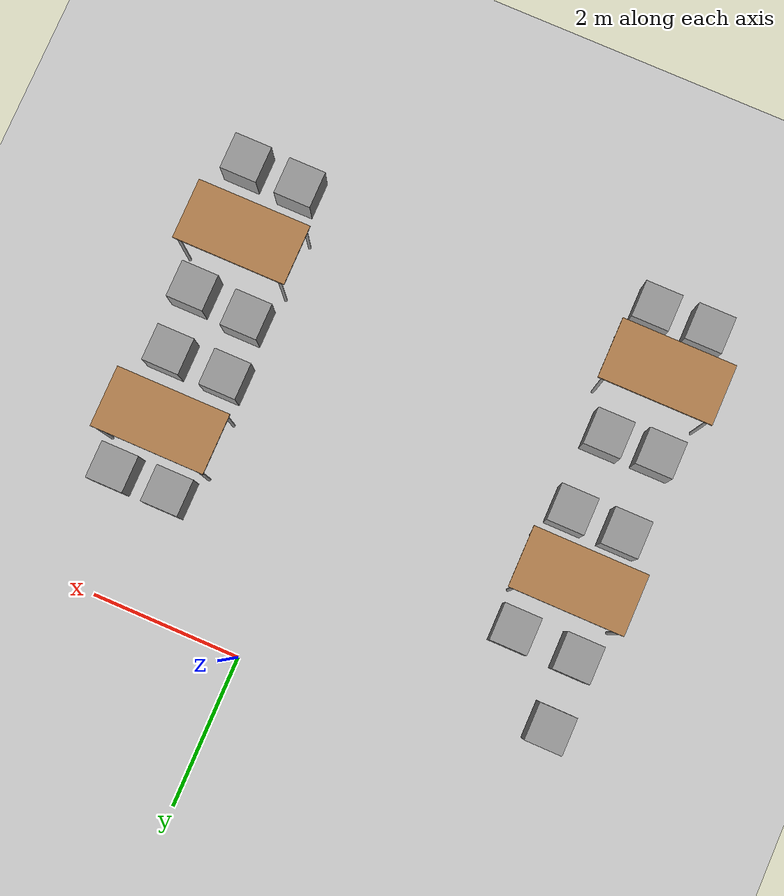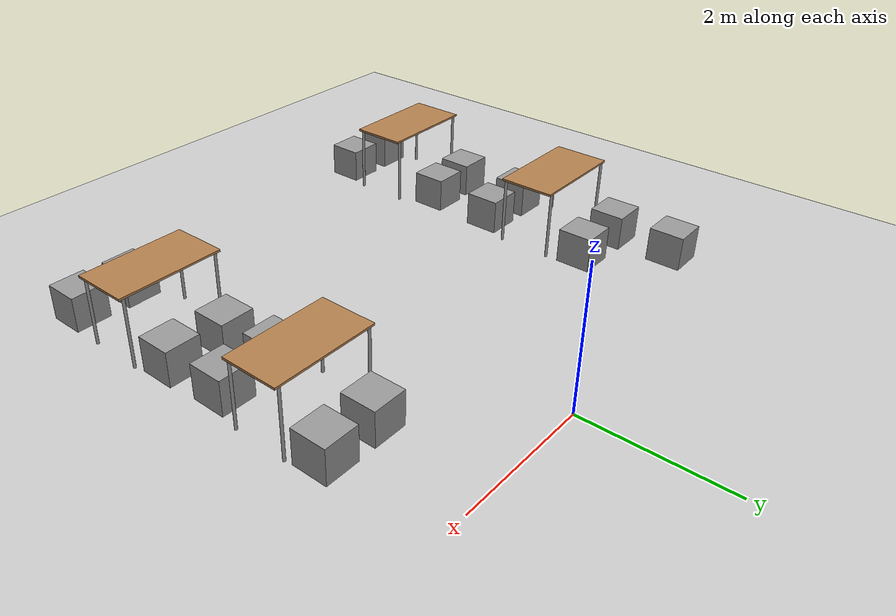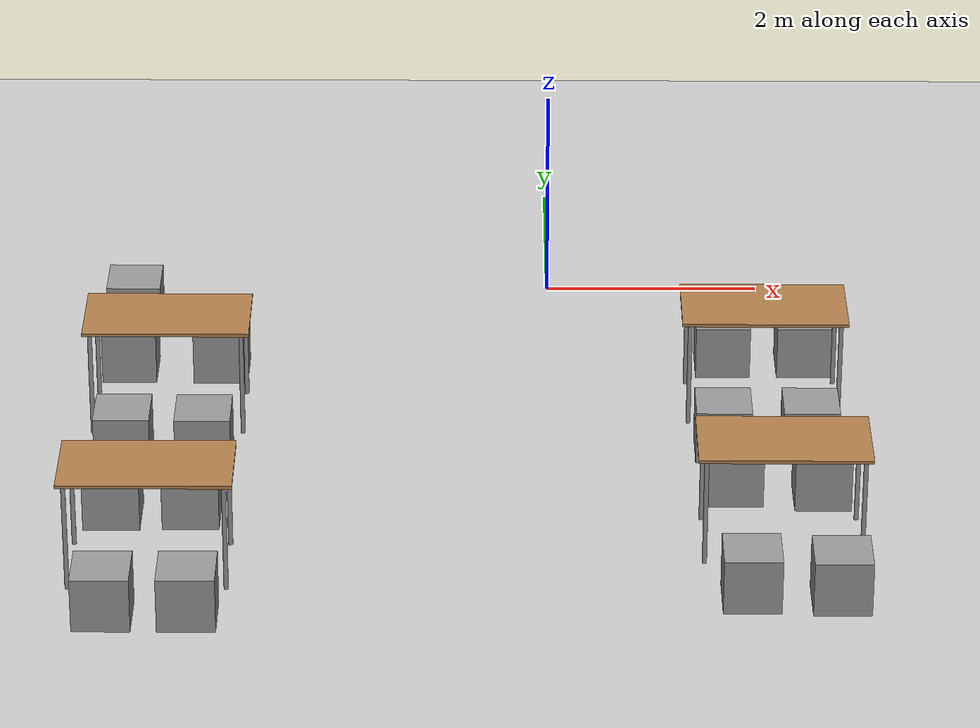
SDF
<sdf version="1.7">
 <world name="default">
  <model name="ground_plane">
   <static>1</static>
   <link name="link">
    <collision name="collision">
     <geometry><plane><normal>0 0 1</normal><size>100 100</size></plane></geometry>
     <surface><friction><ode><mu>100</mu><mu2>50</mu2></ode></friction></surface>
    </collision>
    <visual name="visual">
     <cast_shadows>0</cast_shadows>
     <geometry><plane><normal>0 0 1</normal><size>100 100</size></plane></geometry>
     <material>
      <script><uri>file://media/materials/scripts/gazebo.material</uri><name>Gazebo/Grey</name></script>
     </material>
    </visual>
   </link>
  </model>
  <model name="table_1">
   <static>1</static>
   <link name="link">
    <collision name="surface">
     <pose>0 0 1 0 -0 0</pose>
     <geometry><box><size>1.5 0.8 0.03</size></box></geometry>
     <surface><friction><ode><mu>0.6</mu><mu2>0.6</mu2></ode></friction></surface>
    </collision>
    <visual name="visual1">
     <pose>0 0 1 0 -0 0</pose>
     <geometry><box><size>1.5 0.8 0.03</size></box></geometry>
     <material>
      <script><uri>file://media/materials/scripts/gazebo.material</uri><name>Gazebo/Wood</name></script>
     </material>
    </visual>
    <collision name="front_left_leg">
     <pose>0.68 0.38 0.5 0 -0 0</pose>
     <geometry><cylinder><radius>0.02</radius><length>1</length></cylinder></geometry>
    </collision>
    <visual name="front_left_leg">
     <pose>0.68 0.38 0.5 0 -0 0</pose>
     <geometry><cylinder><radius>0.02</radius><length>1</length></cylinder></geometry>
     <material>
      <script><uri>file://media/materials/scripts/gazebo.material</uri><name>Gazebo/Grey</name></script>
     </material>
    </visual>
    <collision name="front_right_leg">
     <pose>0.68 -0.38 0.5 0 -0 0</pose>
     <geometry><cylinder><radius>0.02</radius><length>1</length></cylinder></geometry>
    </collision>
    <visual name="front_right_leg">
     <pose>0.68 -0.38 0.5 0 -0 0</pose>
     <geometry><cylinder><radius>0.02</radius><length>1</length></cylinder></geometry>
     <material>
      <script><uri>file://media/materials/scripts/gazebo.material</uri><name>Gazebo/Grey</name></script>
     </material>
    </visual>
    <collision name="back_right_leg">
     <pose>-0.68 -0.38 0.5 0 -0 0</pose>
     <geometry><cylinder><radius>0.02</radius><length>1</length></cylinder></geometry>
    </collision>
    <visual name="back_right_leg">
     <pose>-0.68 -0.38 0.5 0 -0 0</pose>
     <geometry><cylinder><radius>0.02</radius><length>1</length></cylinder></geometry>
     <material>
      <script><uri>file://media/materials/scripts/gazebo.material</uri><name>Gazebo/Grey</name></script>
     </material>
    </visual>
    <collision name="back_left_leg">
     <pose>-0.68 0.38 0.5 0 -0 0</pose>
     <geometry><cylinder><radius>0.02</radius><length>1</length></cylinder></geometry>
    </collision>
    <visual name="back_left_leg">
     <pose>-0.68 0.38 0.5 0 -0 0</pose>
     <geometry><cylinder><radius>0.02</radius><length>1</length></cylinder></geometry>
     <material>
      <script><uri>file://media/materials/scripts/gazebo.material</uri><name>Gazebo/Grey</name></script>
     </material>
    </visual>
   </link>
   <pose>-3.46014 -2.51399 0 0 -0 0</pose>
  </model>
  <model name="table_2">
   <static>1</static>
   <link name="link">
    <collision name="surface">
     <pose>0 0 1 0 -0 0</pose>
     <geometry><box><size>1.5 0.8 0.03</size></box></geometry>
     <surface><friction><ode><mu>0.6</mu><mu2>0.6</mu2></ode></friction></surface>
    </collision>
    <visual name="visual1">
     <pose>0 0 1 0 -0 0</pose>
     <geometry><box><size>1.5 0.8 0.03</size></box></geometry>
     <material>
      <script><uri>file://media/materials/scripts/gazebo.material</uri><name>Gazebo/Wood</name></script>
     </material>
    </visual>
    <collision name="front_left_leg">
     <pose>0.68 0.38 0.5 0 -0 0</pose>
     <geometry><cylinder><radius>0.02</radius><length>1</length></cylinder></geometry>
    </collision>
    <visual name="front_left_leg">
     <pose>0.68 0.38 0.5 0 -0 0</pose>
     <geometry><cylinder><radius>0.02</radius><length>1</length></cylinder></geometry>
     <material>
      <script><uri>file://media/materials/scripts/gazebo.material</uri><name>Gazebo/Grey</name></script>
     </material>
    </visual>
    <collision name="front_right_leg">
     <pose>0.68 -0.38 0.5 0 -0 0</pose>
     <geometry><cylinder><radius>0.02</radius><length>1</length></cylinder></geometry>
    </collision>
    <visual name="front_right_leg">
     <pose>0.68 -0.38 0.5 0 -0 0</pose>
     <geometry><cylinder><radius>0.02</radius><length>1</length></cylinder></geometry>
     <material>
      <script><uri>file://media/materials/scripts/gazebo.material</uri><name>Gazebo/Grey</name></script>
     </material>
    </visual>
    <collision name="back_right_leg">
     <pose>-0.68 -0.38 0.5 0 -0 0</pose>
     <geometry><cylinder><radius>0.02</radius><length>1</length></cylinder></geometry>
    </collision>
    <visual name="back_right_leg">
     <pose>-0.68 -0.38 0.5 0 -0 0</pose>
     <geometry><cylinder><radius>0.02</radius><length>1</length></cylinder></geometry>
     <material>
      <script><uri>file://media/materials/scripts/gazebo.material</uri><name>Gazebo/Grey</name></script>
     </material>
    </visual>
    <collision name="back_left_leg">
     <pose>-0.68 0.38 0.5 0 -0 0</pose>
     <geometry><cylinder><radius>0.02</radius><length>1</length></cylinder></geometry>
    </collision>
    <visual name="back_left_leg">
     <pose>-0.68 0.38 0.5 0 -0 0</pose>
     <geometry><cylinder><radius>0.02</radius><length>1</length></cylinder></geometry>
     <material>
      <script><uri>file://media/materials/scripts/gazebo.material</uri><name>Gazebo/Grey</name></script>
     </material>
    </visual>
   </link>
   <pose>-3.46984 -5.28766 0 0 -0 0</pose>
  </model>
  <model name="table_5">
   <static>1</static>
   <link name="link">
    <collision name="surface">
     <pose>0 0 1 0 -0 0</pose>
     <geometry><box><size>1.5 0.8 0.03</size></box></geometry>
     <surface><friction><ode><mu>0.6</mu><mu2>0.6</mu2></ode></friction></surface>
    </collision>
    <visual name="visual1">
     <pose>0 0 1 0 -0 0</pose>
     <geometry><box><size>1.5 0.8 0.03</size></box></geometry>
     <material>
      <script><uri>file://media/materials/scripts/gazebo.material</uri><name>Gazebo/Wood</name></script>
     </material>
    </visual>
    <collision name="front_left_leg">
     <pose>0.68 0.38 0.5 0 -0 0</pose>
     <geometry><cylinder><radius>0.02</radius><length>1</length></cylinder></geometry>
    </collision>
    <visual name="front_left_leg">
     <pose>0.68 0.38 0.5 0 -0 0</pose>
     <geometry><cylinder><radius>0.02</radius><length>1</length></cylinder></geometry>
     <material>
      <script><uri>file://media/materials/scripts/gazebo.material</uri><name>Gazebo/Grey</name></script>
     </material>
    </visual>
    <collision name="front_right_leg">
     <pose>0.68 -0.38 0.5 0 -0 0</pose>
     <geometry><cylinder><radius>0.02</radius><length>1</length></cylinder></geometry>
    </collision>
    <visual name="front_right_leg">
     <pose>0.68 -0.38 0.5 0 -0 0</pose>
     <geometry><cylinder><radius>0.02</radius><length>1</length></cylinder></geometry>
     <material>
      <script><uri>file://media/materials/scripts/gazebo.material</uri><name>Gazebo/Grey</name></script>
     </material>
    </visual>
    <collision name="back_right_leg">
     <pose>-0.68 -0.38 0.5 0 -0 0</pose>
     <geometry><cylinder><radius>0.02</radius><length>1</length></cylinder></geometry>
    </collision>
    <visual name="back_right_leg">
     <pose>-0.68 -0.38 0.5 0 -0 0</pose>
     <geometry><cylinder><radius>0.02</radius><length>1</length></cylinder></geometry>
     <material>
      <script><uri>file://media/materials/scripts/gazebo.material</uri><name>Gazebo/Grey</name></script>
     </material>
    </visual>
    <collision name="back_left_leg">
     <pose>-0.68 0.38 0.5 0 -0 0</pose>
     <geometry><cylinder><radius>0.02</radius><length>1</length></cylinder></geometry>
    </collision>
    <visual name="back_left_leg">
     <pose>-0.68 0.38 0.5 0 -0 0</pose>
     <geometry><cylinder><radius>0.02</radius><length>1</length></cylinder></geometry>
     <material>
      <script><uri>file://media/materials/scripts/gazebo.material</uri><name>Gazebo/Grey</name></script>
     </material>
    </visual>
   </link>
   <pose>1.94221 -2.29258 0 0 -0 0</pose>
  </model>
  <model name="table_6">
   <static>1</static>
   <link name="link">
    <collision name="surface">
     <pose>0 0 1 0 -0 0</pose>
     <geometry><box><size>1.5 0.8 0.03</size></box></geometry>
     <surface><friction><ode><mu>0.6</mu><mu2>0.6</mu2></ode></friction></surface>
    </collision>
    <visual name="visual1">
     <pose>0 0 1 0 -0 0</pose>
     <geometry><box><size>1.5 0.8 0.03</size></box></geometry>
     <material>
      <script><uri>file://media/materials/scripts/gazebo.material</uri><name>Gazebo/Wood</name></script>
     </material>
    </visual>
    <collision name="front_left_leg">
     <pose>0.68 0.38 0.5 0 -0 0</pose>
     <geometry><cylinder><radius>0.02</radius><length>1</length></cylinder></geometry>
    </collision>
    <visual name="front_left_leg">
     <pose>0.68 0.38 0.5 0 -0 0</pose>
     <geometry><cylinder><radius>0.02</radius><length>1</length></cylinder></geometry>
     <material>
      <script><uri>file://media/materials/scripts/gazebo.material</uri><name>Gazebo/Grey</name></script>
     </material>
    </visual>
    <collision name="front_right_leg">
     <pose>0.68 -0.38 0.5 0 -0 0</pose>
     <geometry><cylinder><radius>0.02</radius><length>1</length></cylinder></geometry>
    </collision>
    <visual name="front_right_leg">
     <pose>0.68 -0.38 0.5 0 -0 0</pose>
     <geometry><cylinder><radius>0.02</radius><length>1</length></cylinder></geometry>
     <material>
      <script><uri>file://media/materials/scripts/gazebo.material</uri><name>Gazebo/Grey</name></script>
     </material>
    </visual>
    <collision name="back_right_leg">
     <pose>-0.68 -0.38 0.5 0 -0 0</pose>
     <geometry><cylinder><radius>0.02</radius><length>1</length></cylinder></geometry>
    </collision>
    <visual name="back_right_leg">
     <pose>-0.68 -0.38 0.5 0 -0 0</pose>
     <geometry><cylinder><radius>0.02</radius><length>1</length></cylinder></geometry>
     <material>
      <script><uri>file://media/materials/scripts/gazebo.material</uri><name>Gazebo/Grey</name></script>
     </material>
    </visual>
    <collision name="back_left_leg">
     <pose>-0.68 0.38 0.5 0 -0 0</pose>
     <geometry><cylinder><radius>0.02</radius><length>1</length></cylinder></geometry>
    </collision>
    <visual name="back_left_leg">
     <pose>-0.68 0.38 0.5 0 -0 0</pose>
     <geometry><cylinder><radius>0.02</radius><length>1</length></cylinder></geometry>
     <material>
      <script><uri>file://media/materials/scripts/gazebo.material</uri><name>Gazebo/Grey</name></script>
     </material>
    </visual>
   </link>
   <pose>1.99333 -4.81792 0 0 -0 0</pose>
  </model>
  <model name="chair_3">
   <link name="link">
    <inertial>
     <mass>1</mass>
     <inertia>
      <ixx>0.166667</ixx>
      <ixy>0</ixy>
      <ixz>0</ixz>
      <iyy>0.166667</iyy>
      <iyz>0</iyz>
      <izz>0.166667</izz>
     </inertia>
    </inertial>
    <visual name="visual">
     <geometry><box><size>0.5 0.5 0.5</size></box></geometry>
     <material>
      <script><name>Gazebo/Grey</name><uri>file://media/materials/scripts/gazebo.material</uri></script>
      <shader type="pixel"><normal_map>__default__</normal_map></shader>
      <ambient>0.3 0.3 0.3 1</ambient>
      <diffuse>0.7 0.7 0.7 1</diffuse>
      <specular>0.01 0.01 0.01 1</specular>
      <emissive>0 0 0 1</emissive>
     </material>
    </visual>
    <collision name="collision">
     <geometry><box><size>0.5 0.5 0.5</size></box></geometry>
     <surface>
      <friction>
       <ode><mu>1</mu><mu2>1</mu2><fdir1>0 0 0</fdir1><slip1>0</slip1><slip2>0</slip2></ode>
       <torsional>
        <coefficient>1</coefficient>
        <patch_radius>0</patch_radius>
        <surface_radius>0</surface_radius>
        <use_patch_radius>1</use_patch_radius>
        <ode><slip>0</slip></ode>
       </torsional>
      </friction>
      <bounce><restitution_coefficient>0</restitution_coefficient><threshold>1e+06</threshold></bounce>
      <contact>
       <collide_without_contact>0</collide_without_contact>
       <collide_without_contact_bitmask>1</collide_without_contact_bitmask>
       <collide_bitmask>1</collide_bitmask>
       <ode>
        <soft_cfm>0</soft_cfm>
        <soft_erp>0.2</soft_erp>
        <kp>1e+13</kp>
        <kd>1</kd>
        <max_vel>0.01</max_vel>
        <min_depth>0</min_depth>
       </ode>
       <bullet>
        <split_impulse>1</split_impulse>
        <split_impulse_penetration_threshold>-0.01</split_impulse_penetration_threshold>
        <soft_cfm>0</soft_cfm>
        <soft_erp>0.2</soft_erp>
        <kp>1e+13</kp>
        <kd>1</kd>
       </bullet>
      </contact>
     </surface>
    </collision>
   </link>
   <static>0</static>
   <pose>-3.89509 -0.756773 0.25 0 -0 0</pose>
  </model>
  <model name="chair_7">
   <link name="link">
    <inertial>
     <mass>1</mass>
     <inertia>
      <ixx>0.166667</ixx>
      <ixy>0</ixy>
      <ixz>0</ixz>
      <iyy>0.166667</iyy>
      <iyz>0</iyz>
      <izz>0.166667</izz>
     </inertia>
    </inertial>
    <visual name="visual">
     <geometry><box><size>0.5 0.5 0.5</size></box></geometry>
     <material>
      <script><name>Gazebo/Grey</name><uri>file://media/materials/scripts/gazebo.material</uri></script>
      <shader type="pixel"><normal_map>__default__</normal_map></shader>
      <ambient>0.3 0.3 0.3 1</ambient>
      <diffuse>0.7 0.7 0.7 1</diffuse>
      <specular>0.01 0.01 0.01 1</specular>
      <emissive>0 0 0 1</emissive>
     </material>
    </visual>
    <collision name="collision">
     <geometry><box><size>0.5 0.5 0.5</size></box></geometry>
     <surface>
      <friction>
       <ode><mu>1</mu><mu2>1</mu2><fdir1>0 0 0</fdir1><slip1>0</slip1><slip2>0</slip2></ode>
       <torsional>
        <coefficient>1</coefficient>
        <patch_radius>0</patch_radius>
        <surface_radius>0</surface_radius>
        <use_patch_radius>1</use_patch_radius>
        <ode><slip>0</slip></ode>
       </torsional>
      </friction>
      <bounce><restitution_coefficient>0</restitution_coefficient><threshold>1e+06</threshold></bounce>
      <contact>
       <collide_without_contact>0</collide_without_contact>
       <collide_without_contact_bitmask>1</collide_without_contact_bitmask>
       <collide_bitmask>1</collide_bitmask>
       <ode>
        <soft_cfm>0</soft_cfm>
        <soft_erp>0.2</soft_erp>
        <kp>1e+13</kp>
        <kd>1</kd>
        <max_vel>0.01</max_vel>
        <min_depth>0</min_depth>
       </ode>
       <bullet>
        <split_impulse>1</split_impulse>
        <split_impulse_penetration_threshold>-0.01</split_impulse_penetration_threshold>
        <soft_cfm>0</soft_cfm>
        <soft_erp>0.2</soft_erp>
        <kp>1e+13</kp>
        <kd>1</kd>
       </bullet>
      </contact>
     </surface>
    </collision>
   </link>
   <static>0</static>
   <pose>-3.87613 -1.6864 0.25 0 -0 0</pose>
  </model>
  <model name="chair_8">
   <link name="link">
    <inertial>
     <mass>1</mass>
     <inertia>
      <ixx>0.166667</ixx>
      <ixy>0</ixy>
      <ixz>0</ixz>
      <iyy>0.166667</iyy>
      <iyz>0</iyz>
      <izz>0.166667</izz>
     </inertia>
    </inertial>
    <visual name="visual">
     <geometry><box><size>0.5 0.5 0.5</size></box></geometry>
     <material>
      <script><name>Gazebo/Grey</name><uri>file://media/materials/scripts/gazebo.material</uri></script>
      <shader type="pixel"><normal_map>__default__</normal_map></shader>
      <ambient>0.3 0.3 0.3 1</ambient>
      <diffuse>0.7 0.7 0.7 1</diffuse>
      <specular>0.01 0.01 0.01 1</specular>
      <emissive>0 0 0 1</emissive>
     </material>
    </visual>
    <collision name="collision">
     <geometry><box><size>0.5 0.5 0.5</size></box></geometry>
     <surface>
      <friction>
       <ode><mu>1</mu><mu2>1</mu2><fdir1>0 0 0</fdir1><slip1>0</slip1><slip2>0</slip2></ode>
       <torsional>
        <coefficient>1</coefficient>
        <patch_radius>0</patch_radius>
        <surface_radius>0</surface_radius>
        <use_patch_radius>1</use_patch_radius>
        <ode><slip>0</slip></ode>
       </torsional>
      </friction>
      <bounce><restitution_coefficient>0</restitution_coefficient><threshold>1e+06</threshold></bounce>
      <contact>
       <collide_without_contact>0</collide_without_contact>
       <collide_without_contact_bitmask>1</collide_without_contact_bitmask>
       <collide_bitmask>1</collide_bitmask>
       <ode>
        <soft_cfm>0</soft_cfm>
        <soft_erp>0.2</soft_erp>
        <kp>1e+13</kp>
        <kd>1</kd>
        <max_vel>0.01</max_vel>
        <min_depth>0</min_depth>
       </ode>
       <bullet>
        <split_impulse>1</split_impulse>
        <split_impulse_penetration_threshold>-0.01</split_impulse_penetration_threshold>
        <soft_cfm>0</soft_cfm>
        <soft_erp>0.2</soft_erp>
        <kp>1e+13</kp>
        <kd>1</kd>
       </bullet>
      </contact>
     </surface>
    </collision>
   </link>
   <static>0</static>
   <pose>-3.03127 -1.70473 0.25 0 -0 0</pose>
  </model>
  <model name="chair_9">
   <link name="link">
    <inertial>
     <mass>1</mass>
     <inertia>
      <ixx>0.166667</ixx>
      <ixy>0</ixy>
      <ixz>0</ixz>
      <iyy>0.166667</iyy>
      <iyz>0</iyz>
      <izz>0.166667</izz>
     </inertia>
    </inertial>
    <visual name="visual">
     <geometry><box><size>0.5 0.5 0.5</size></box></geometry>
     <material>
      <script><name>Gazebo/Grey</name><uri>file://media/materials/scripts/gazebo.material</uri></script>
      <shader type="pixel"><normal_map>__default__</normal_map></shader>
      <ambient>0.3 0.3 0.3 1</ambient>
      <diffuse>0.7 0.7 0.7 1</diffuse>
      <specular>0.01 0.01 0.01 1</specular>
      <emissive>0 0 0 1</emissive>
     </material>
    </visual>
    <collision name="collision">
     <geometry><box><size>0.5 0.5 0.5</size></box></geometry>
     <surface>
      <friction>
       <ode><mu>1</mu><mu2>1</mu2><fdir1>0 0 0</fdir1><slip1>0</slip1><slip2>0</slip2></ode>
       <torsional>
        <coefficient>1</coefficient>
        <patch_radius>0</patch_radius>
        <surface_radius>0</surface_radius>
        <use_patch_radius>1</use_patch_radius>
        <ode><slip>0</slip></ode>
       </torsional>
      </friction>
      <bounce><restitution_coefficient>0</restitution_coefficient><threshold>1e+06</threshold></bounce>
      <contact>
       <collide_without_contact>0</collide_without_contact>
       <collide_without_contact_bitmask>1</collide_without_contact_bitmask>
       <collide_bitmask>1</collide_bitmask>
       <ode>
        <soft_cfm>0</soft_cfm>
        <soft_erp>0.2</soft_erp>
        <kp>1e+13</kp>
        <kd>1</kd>
        <max_vel>0.01</max_vel>
        <min_depth>0</min_depth>
       </ode>
       <bullet>
        <split_impulse>1</split_impulse>
        <split_impulse_penetration_threshold>-0.01</split_impulse_penetration_threshold>
        <soft_cfm>0</soft_cfm>
        <soft_erp>0.2</soft_erp>
        <kp>1e+13</kp>
        <kd>1</kd>
       </bullet>
      </contact>
     </surface>
    </collision>
   </link>
   <static>0</static>
   <pose>-3.82863 -3.34222 0.25 0 -0 0</pose>
  </model>
  <model name="chair_10">
   <link name="link">
    <inertial>
     <mass>1</mass>
     <inertia>
      <ixx>0.166667</ixx>
      <ixy>0</ixy>
      <ixz>0</ixz>
      <iyy>0.166667</iyy>
      <iyz>0</iyz>
      <izz>0.166667</izz>
     </inertia>
    </inertial>
    <visual name="visual">
     <geometry><box><size>0.5 0.5 0.5</size></box></geometry>
     <material>
      <script><name>Gazebo/Grey</name><uri>file://media/materials/scripts/gazebo.material</uri></script>
      <shader type="pixel"><normal_map>__default__</normal_map></shader>
      <ambient>0.3 0.3 0.3 1</ambient>
      <diffuse>0.7 0.7 0.7 1</diffuse>
      <specular>0.01 0.01 0.01 1</specular>
      <emissive>0 0 0 1</emissive>
     </material>
    </visual>
    <collision name="collision">
     <geometry><box><size>0.5 0.5 0.5</size></box></geometry>
     <surface>
      <friction>
       <ode><mu>1</mu><mu2>1</mu2><fdir1>0 0 0</fdir1><slip1>0</slip1><slip2>0</slip2></ode>
       <torsional>
        <coefficient>1</coefficient>
        <patch_radius>0</patch_radius>
        <surface_radius>0</surface_radius>
        <use_patch_radius>1</use_patch_radius>
        <ode><slip>0</slip></ode>
       </torsional>
      </friction>
      <bounce><restitution_coefficient>0</restitution_coefficient><threshold>1e+06</threshold></bounce>
      <contact>
       <collide_without_contact>0</collide_without_contact>
       <collide_without_contact_bitmask>1</collide_without_contact_bitmask>
       <collide_bitmask>1</collide_bitmask>
       <ode>
        <soft_cfm>0</soft_cfm>
        <soft_erp>0.2</soft_erp>
        <kp>1e+13</kp>
        <kd>1</kd>
        <max_vel>0.01</max_vel>
        <min_depth>0</min_depth>
       </ode>
       <bullet>
        <split_impulse>1</split_impulse>
        <split_impulse_penetration_threshold>-0.01</split_impulse_penetration_threshold>
        <soft_cfm>0</soft_cfm>
        <soft_erp>0.2</soft_erp>
        <kp>1e+13</kp>
        <kd>1</kd>
       </bullet>
      </contact>
     </surface>
    </collision>
   </link>
   <static>0</static>
   <pose>-3.1053 -3.34888 0.25 0 -0 0</pose>
  </model>
  <model name="chair_11">
   <link name="link">
    <inertial>
     <mass>1</mass>
     <inertia>
      <ixx>0.166667</ixx>
      <ixy>0</ixy>
      <ixz>0</ixz>
      <iyy>0.166667</iyy>
      <iyz>0</iyz>
      <izz>0.166667</izz>
     </inertia>
    </inertial>
    <visual name="visual">
     <geometry><box><size>0.5 0.5 0.5</size></box></geometry>
     <material>
      <script><name>Gazebo/Grey</name><uri>file://media/materials/scripts/gazebo.material</uri></script>
      <shader type="pixel"><normal_map>__default__</normal_map></shader>
      <ambient>0.3 0.3 0.3 1</ambient>
      <diffuse>0.7 0.7 0.7 1</diffuse>
      <specular>0.01 0.01 0.01 1</specular>
      <emissive>0 0 0 1</emissive>
     </material>
    </visual>
    <collision name="collision">
     <geometry><box><size>0.5 0.5 0.5</size></box></geometry>
     <surface>
      <friction>
       <ode><mu>1</mu><mu2>1</mu2><fdir1>0 0 0</fdir1><slip1>0</slip1><slip2>0</slip2></ode>
       <torsional>
        <coefficient>1</coefficient>
        <patch_radius>0</patch_radius>
        <surface_radius>0</surface_radius>
        <use_patch_radius>1</use_patch_radius>
        <ode><slip>0</slip></ode>
       </torsional>
      </friction>
      <bounce><restitution_coefficient>0</restitution_coefficient><threshold>1e+06</threshold></bounce>
      <contact>
       <collide_without_contact>0</collide_without_contact>
       <collide_without_contact_bitmask>1</collide_without_contact_bitmask>
       <collide_bitmask>1</collide_bitmask>
       <ode>
        <soft_cfm>0</soft_cfm>
        <soft_erp>0.2</soft_erp>
        <kp>1e+13</kp>
        <kd>1</kd>
        <max_vel>0.01</max_vel>
        <min_depth>0</min_depth>
       </ode>
       <bullet>
        <split_impulse>1</split_impulse>
        <split_impulse_penetration_threshold>-0.01</split_impulse_penetration_threshold>
        <soft_cfm>0</soft_cfm>
        <soft_erp>0.2</soft_erp>
        <kp>1e+13</kp>
        <kd>1</kd>
       </bullet>
      </contact>
     </surface>
    </collision>
   </link>
   <static>0</static>
   <pose>-3.84529 -4.43114 0.25 0 -0 0</pose>
  </model>
  <model name="chair_12">
   <link name="link">
    <inertial>
     <mass>1</mass>
     <inertia>
      <ixx>0.166667</ixx>
      <ixy>0</ixy>
      <ixz>0</ixz>
      <iyy>0.166667</iyy>
      <iyz>0</iyz>
      <izz>0.166667</izz>
     </inertia>
    </inertial>
    <visual name="visual">
     <geometry><box><size>0.5 0.5 0.5</size></box></geometry>
     <material>
      <script><name>Gazebo/Grey</name><uri>file://media/materials/scripts/gazebo.material</uri></script>
      <shader type="pixel"><normal_map>__default__</normal_map></shader>
      <ambient>0.3 0.3 0.3 1</ambient>
      <diffuse>0.7 0.7 0.7 1</diffuse>
      <specular>0.01 0.01 0.01 1</specular>
      <emissive>0 0 0 1</emissive>
     </material>
    </visual>
    <collision name="collision">
     <geometry><box><size>0.5 0.5 0.5</size></box></geometry>
     <surface>
      <friction>
       <ode><mu>1</mu><mu2>1</mu2><fdir1>0 0 0</fdir1><slip1>0</slip1><slip2>0</slip2></ode>
       <torsional>
        <coefficient>1</coefficient>
        <patch_radius>0</patch_radius>
        <surface_radius>0</surface_radius>
        <use_patch_radius>1</use_patch_radius>
        <ode><slip>0</slip></ode>
       </torsional>
      </friction>
      <bounce><restitution_coefficient>0</restitution_coefficient><threshold>1e+06</threshold></bounce>
      <contact>
       <collide_without_contact>0</collide_without_contact>
       <collide_without_contact_bitmask>1</collide_without_contact_bitmask>
       <collide_bitmask>1</collide_bitmask>
       <ode>
        <soft_cfm>0</soft_cfm>
        <soft_erp>0.2</soft_erp>
        <kp>1e+13</kp>
        <kd>1</kd>
        <max_vel>0.01</max_vel>
        <min_depth>0</min_depth>
       </ode>
       <bullet>
        <split_impulse>1</split_impulse>
        <split_impulse_penetration_threshold>-0.01</split_impulse_penetration_threshold>
        <soft_cfm>0</soft_cfm>
        <soft_erp>0.2</soft_erp>
        <kp>1e+13</kp>
        <kd>1</kd>
       </bullet>
      </contact>
     </surface>
    </collision>
   </link>
   <static>0</static>
   <pose>-3.15322 -4.40825 0.25 0 -0 0</pose>
  </model>
  <model name="chair_13">
   <link name="link">
    <inertial>
     <mass>1</mass>
     <inertia>
      <ixx>0.166667</ixx>
      <ixy>0</ixy>
      <ixz>0</ixz>
      <iyy>0.166667</iyy>
      <iyz>0</iyz>
      <izz>0.166667</izz>
     </inertia>
    </inertial>
    <visual name="visual">
     <geometry><box><size>0.5 0.5 0.5</size></box></geometry>
     <material>
      <script><name>Gazebo/Grey</name><uri>file://media/materials/scripts/gazebo.material</uri></script>
      <shader type="pixel"><normal_map>__default__</normal_map></shader>
      <ambient>0.3 0.3 0.3 1</ambient>
      <diffuse>0.7 0.7 0.7 1</diffuse>
      <specular>0.01 0.01 0.01 1</specular>
      <emissive>0 0 0 1</emissive>
     </material>
    </visual>
    <collision name="collision">
     <geometry><box><size>0.5 0.5 0.5</size></box></geometry>
     <surface>
      <friction>
       <ode><mu>1</mu><mu2>1</mu2><fdir1>0 0 0</fdir1><slip1>0</slip1><slip2>0</slip2></ode>
       <torsional>
        <coefficient>1</coefficient>
        <patch_radius>0</patch_radius>
        <surface_radius>0</surface_radius>
        <use_patch_radius>1</use_patch_radius>
        <ode><slip>0</slip></ode>
       </torsional>
      </friction>
      <bounce><restitution_coefficient>0</restitution_coefficient><threshold>1e+06</threshold></bounce>
      <contact>
       <collide_without_contact>0</collide_without_contact>
       <collide_without_contact_bitmask>1</collide_without_contact_bitmask>
       <collide_bitmask>1</collide_bitmask>
       <ode>
        <soft_cfm>0</soft_cfm>
        <soft_erp>0.2</soft_erp>
        <kp>1e+13</kp>
        <kd>1</kd>
        <max_vel>0.01</max_vel>
        <min_depth>0</min_depth>
       </ode>
       <bullet>
        <split_impulse>1</split_impulse>
        <split_impulse_penetration_threshold>-0.01</split_impulse_penetration_threshold>
        <soft_cfm>0</soft_cfm>
        <soft_erp>0.2</soft_erp>
        <kp>1e+13</kp>
        <kd>1</kd>
       </bullet>
      </contact>
     </surface>
    </collision>
   </link>
   <static>0</static>
   <pose>-3.81092 -6.14092 0.25 0 -0 0</pose>
  </model>
  <model name="chair_14">
   <link name="link">
    <inertial>
     <mass>1</mass>
     <inertia>
      <ixx>0.166667</ixx>
      <ixy>0</ixy>
      <ixz>0</ixz>
      <iyy>0.166667</iyy>
      <iyz>0</iyz>
      <izz>0.166667</izz>
     </inertia>
    </inertial>
    <visual name="visual">
     <geometry><box><size>0.5 0.5 0.5</size></box></geometry>
     <material>
      <script><name>Gazebo/Grey</name><uri>file://media/materials/scripts/gazebo.material</uri></script>
      <shader type="pixel"><normal_map>__default__</normal_map></shader>
      <ambient>0.3 0.3 0.3 1</ambient>
      <diffuse>0.7 0.7 0.7 1</diffuse>
      <specular>0.01 0.01 0.01 1</specular>
      <emissive>0 0 0 1</emissive>
     </material>
    </visual>
    <collision name="collision">
     <geometry><box><size>0.5 0.5 0.5</size></box></geometry>
     <surface>
      <friction>
       <ode><mu>1</mu><mu2>1</mu2><fdir1>0 0 0</fdir1><slip1>0</slip1><slip2>0</slip2></ode>
       <torsional>
        <coefficient>1</coefficient>
        <patch_radius>0</patch_radius>
        <surface_radius>0</surface_radius>
        <use_patch_radius>1</use_patch_radius>
        <ode><slip>0</slip></ode>
       </torsional>
      </friction>
      <bounce><restitution_coefficient>0</restitution_coefficient><threshold>1e+06</threshold></bounce>
      <contact>
       <collide_without_contact>0</collide_without_contact>
       <collide_without_contact_bitmask>1</collide_without_contact_bitmask>
       <collide_bitmask>1</collide_bitmask>
       <ode>
        <soft_cfm>0</soft_cfm>
        <soft_erp>0.2</soft_erp>
        <kp>1e+13</kp>
        <kd>1</kd>
        <max_vel>0.01</max_vel>
        <min_depth>0</min_depth>
       </ode>
       <bullet>
        <split_impulse>1</split_impulse>
        <split_impulse_penetration_threshold>-0.01</split_impulse_penetration_threshold>
        <soft_cfm>0</soft_cfm>
        <soft_erp>0.2</soft_erp>
        <kp>1e+13</kp>
        <kd>1</kd>
       </bullet>
      </contact>
     </surface>
    </collision>
   </link>
   <static>0</static>
   <pose>-3.09051 -6.14071 0.25 0 -0 0</pose>
  </model>
  <model name="chair_15">
   <link name="link">
    <inertial>
     <mass>1</mass>
     <inertia>
      <ixx>0.166667</ixx>
      <ixy>0</ixy>
      <ixz>0</ixz>
      <iyy>0.166667</iyy>
      <iyz>0</iyz>
      <izz>0.166667</izz>
     </inertia>
    </inertial>
    <visual name="visual">
     <geometry><box><size>0.5 0.5 0.5</size></box></geometry>
     <material>
      <script><name>Gazebo/Grey</name><uri>file://media/materials/scripts/gazebo.material</uri></script>
      <shader type="pixel"><normal_map>__default__</normal_map></shader>
      <ambient>0.3 0.3 0.3 1</ambient>
      <diffuse>0.7 0.7 0.7 1</diffuse>
      <specular>0.01 0.01 0.01 1</specular>
      <emissive>0 0 0 1</emissive>
     </material>
    </visual>
    <collision name="collision">
     <geometry><box><size>0.5 0.5 0.5</size></box></geometry>
     <surface>
      <friction>
       <ode><mu>1</mu><mu2>1</mu2><fdir1>0 0 0</fdir1><slip1>0</slip1><slip2>0</slip2></ode>
       <torsional>
        <coefficient>1</coefficient>
        <patch_radius>0</patch_radius>
        <surface_radius>0</surface_radius>
        <use_patch_radius>1</use_patch_radius>
        <ode><slip>0</slip></ode>
       </torsional>
      </friction>
      <bounce><restitution_coefficient>0</restitution_coefficient><threshold>1e+06</threshold></bounce>
      <contact>
       <collide_without_contact>0</collide_without_contact>
       <collide_without_contact_bitmask>1</collide_without_contact_bitmask>
       <collide_bitmask>1</collide_bitmask>
       <ode>
        <soft_cfm>0</soft_cfm>
        <soft_erp>0.2</soft_erp>
        <kp>1e+13</kp>
        <kd>1</kd>
        <max_vel>0.01</max_vel>
        <min_depth>0</min_depth>
       </ode>
       <bullet>
        <split_impulse>1</split_impulse>
        <split_impulse_penetration_threshold>-0.01</split_impulse_penetration_threshold>
        <soft_cfm>0</soft_cfm>
        <soft_erp>0.2</soft_erp>
        <kp>1e+13</kp>
        <kd>1</kd>
       </bullet>
      </contact>
     </surface>
    </collision>
   </link>
   <static>0</static>
   <pose>1.68989 -5.80917 0.25 0 -0 0</pose>
  </model>
  <model name="chair_16">
   <link name="link">
    <inertial>
     <mass>1</mass>
     <inertia>
      <ixx>0.166667</ixx>
      <ixy>0</ixy>
      <ixz>0</ixz>
      <iyy>0.166667</iyy>
      <iyz>0</iyz>
      <izz>0.166667</izz>
     </inertia>
    </inertial>
    <visual name="visual">
     <geometry><box><size>0.5 0.5 0.5</size></box></geometry>
     <material>
      <script><name>Gazebo/Grey</name><uri>file://media/materials/scripts/gazebo.material</uri></script>
      <shader type="pixel"><normal_map>__default__</normal_map></shader>
      <ambient>0.3 0.3 0.3 1</ambient>
      <diffuse>0.7 0.7 0.7 1</diffuse>
      <specular>0.01 0.01 0.01 1</specular>
      <emissive>0 0 0 1</emissive>
     </material>
    </visual>
    <collision name="collision">
     <geometry><box><size>0.5 0.5 0.5</size></box></geometry>
     <surface>
      <friction>
       <ode><mu>1</mu><mu2>1</mu2><fdir1>0 0 0</fdir1><slip1>0</slip1><slip2>0</slip2></ode>
       <torsional>
        <coefficient>1</coefficient>
        <patch_radius>0</patch_radius>
        <surface_radius>0</surface_radius>
        <use_patch_radius>1</use_patch_radius>
        <ode><slip>0</slip></ode>
       </torsional>
      </friction>
      <bounce><restitution_coefficient>0</restitution_coefficient><threshold>1e+06</threshold></bounce>
      <contact>
       <collide_without_contact>0</collide_without_contact>
       <collide_without_contact_bitmask>1</collide_without_contact_bitmask>
       <collide_bitmask>1</collide_bitmask>
       <ode>
        <soft_cfm>0</soft_cfm>
        <soft_erp>0.2</soft_erp>
        <kp>1e+13</kp>
        <kd>1</kd>
        <max_vel>0.01</max_vel>
        <min_depth>0</min_depth>
       </ode>
       <bullet>
        <split_impulse>1</split_impulse>
        <split_impulse_penetration_threshold>-0.01</split_impulse_penetration_threshold>
        <soft_cfm>0</soft_cfm>
        <soft_erp>0.2</soft_erp>
        <kp>1e+13</kp>
        <kd>1</kd>
       </bullet>
      </contact>
     </surface>
    </collision>
   </link>
   <static>0</static>
   <pose>2.45246 -5.83778 0.25 0 -0 0</pose>
  </model>
  <model name="chair_17">
   <link name="link">
    <inertial>
     <mass>1</mass>
     <inertia>
      <ixx>0.166667</ixx>
      <ixy>0</ixy>
      <ixz>0</ixz>
      <iyy>0.166667</iyy>
      <iyz>0</iyz>
      <izz>0.166667</izz>
     </inertia>
    </inertial>
    <visual name="visual">
     <geometry><box><size>0.5 0.5 0.5</size></box></geometry>
     <material>
      <script><name>Gazebo/Grey</name><uri>file://media/materials/scripts/gazebo.material</uri></script>
      <shader type="pixel"><normal_map>__default__</normal_map></shader>
      <ambient>0.3 0.3 0.3 1</ambient>
      <diffuse>0.7 0.7 0.7 1</diffuse>
      <specular>0.01 0.01 0.01 1</specular>
      <emissive>0 0 0 1</emissive>
     </material>
    </visual>
    <collision name="collision">
     <geometry><box><size>0.5 0.5 0.5</size></box></geometry>
     <surface>
      <friction>
       <ode><mu>1</mu><mu2>1</mu2><fdir1>0 0 0</fdir1><slip1>0</slip1><slip2>0</slip2></ode>
       <torsional>
        <coefficient>1</coefficient>
        <patch_radius>0</patch_radius>
        <surface_radius>0</surface_radius>
        <use_patch_radius>1</use_patch_radius>
        <ode><slip>0</slip></ode>
       </torsional>
      </friction>
      <bounce><restitution_coefficient>0</restitution_coefficient><threshold>1e+06</threshold></bounce>
      <contact>
       <collide_without_contact>0</collide_without_contact>
       <collide_without_contact_bitmask>1</collide_without_contact_bitmask>
       <collide_bitmask>1</collide_bitmask>
       <ode>
        <soft_cfm>0</soft_cfm>
        <soft_erp>0.2</soft_erp>
        <kp>1e+13</kp>
        <kd>1</kd>
        <max_vel>0.01</max_vel>
        <min_depth>0</min_depth>
       </ode>
       <bullet>
        <split_impulse>1</split_impulse>
        <split_impulse_penetration_threshold>-0.01</split_impulse_penetration_threshold>
        <soft_cfm>0</soft_cfm>
        <soft_erp>0.2</soft_erp>
        <kp>1e+13</kp>
        <kd>1</kd>
       </bullet>
      </contact>
     </surface>
    </collision>
   </link>
   <static>0</static>
   <pose>1.61968 -3.9808 0.25 0 -0 0</pose>
  </model>
  <model name="chair_18">
   <link name="link">
    <inertial>
     <mass>1</mass>
     <inertia>
      <ixx>0.166667</ixx>
      <ixy>0</ixy>
      <ixz>0</ixz>
      <iyy>0.166667</iyy>
      <iyz>0</iyz>
      <izz>0.166667</izz>
     </inertia>
    </inertial>
    <visual name="visual">
     <geometry><box><size>0.5 0.5 0.5</size></box></geometry>
     <material>
      <script><name>Gazebo/Grey</name><uri>file://media/materials/scripts/gazebo.material</uri></script>
      <shader type="pixel"><normal_map>__default__</normal_map></shader>
      <ambient>0.3 0.3 0.3 1</ambient>
      <diffuse>0.7 0.7 0.7 1</diffuse>
      <specular>0.01 0.01 0.01 1</specular>
      <emissive>0 0 0 1</emissive>
     </material>
    </visual>
    <collision name="collision">
     <geometry><box><size>0.5 0.5 0.5</size></box></geometry>
     <surface>
      <friction>
       <ode><mu>1</mu><mu2>1</mu2><fdir1>0 0 0</fdir1><slip1>0</slip1><slip2>0</slip2></ode>
       <torsional>
        <coefficient>1</coefficient>
        <patch_radius>0</patch_radius>
        <surface_radius>0</surface_radius>
        <use_patch_radius>1</use_patch_radius>
        <ode><slip>0</slip></ode>
       </torsional>
      </friction>
      <bounce><restitution_coefficient>0</restitution_coefficient><threshold>1e+06</threshold></bounce>
      <contact>
       <collide_without_contact>0</collide_without_contact>
       <collide_without_contact_bitmask>1</collide_without_contact_bitmask>
       <collide_bitmask>1</collide_bitmask>
       <ode>
        <soft_cfm>0</soft_cfm>
        <soft_erp>0.2</soft_erp>
        <kp>1e+13</kp>
        <kd>1</kd>
        <max_vel>0.01</max_vel>
        <min_depth>0</min_depth>
       </ode>
       <bullet>
        <split_impulse>1</split_impulse>
        <split_impulse_penetration_threshold>-0.01</split_impulse_penetration_threshold>
        <soft_cfm>0</soft_cfm>
        <soft_erp>0.2</soft_erp>
        <kp>1e+13</kp>
        <kd>1</kd>
       </bullet>
      </contact>
     </surface>
    </collision>
   </link>
   <static>0</static>
   <pose>2.39249 -4.04887 0.25 0 -0 0</pose>
  </model>
  <model name="chair_19">
   <link name="link">
    <inertial>
     <mass>1</mass>
     <inertia>
      <ixx>0.166667</ixx>
      <ixy>0</ixy>
      <ixz>0</ixz>
      <iyy>0.166667</iyy>
      <iyz>0</iyz>
      <izz>0.166667</izz>
     </inertia>
    </inertial>
    <visual name="visual">
     <geometry><box><size>0.5 0.5 0.5</size></box></geometry>
     <material>
      <script><name>Gazebo/Grey</name><uri>file://media/materials/scripts/gazebo.material</uri></script>
      <shader type="pixel"><normal_map>__default__</normal_map></shader>
      <ambient>0.3 0.3 0.3 1</ambient>
      <diffuse>0.7 0.7 0.7 1</diffuse>
      <specular>0.01 0.01 0.01 1</specular>
      <emissive>0 0 0 1</emissive>
     </material>
    </visual>
    <collision name="collision">
     <geometry><box><size>0.5 0.5 0.5</size></box></geometry>
     <surface>
      <friction>
       <ode><mu>1</mu><mu2>1</mu2><fdir1>0 0 0</fdir1><slip1>0</slip1><slip2>0</slip2></ode>
       <torsional>
        <coefficient>1</coefficient>
        <patch_radius>0</patch_radius>
        <surface_radius>0</surface_radius>
        <use_patch_radius>1</use_patch_radius>
        <ode><slip>0</slip></ode>
       </torsional>
      </friction>
      <bounce><restitution_coefficient>0</restitution_coefficient><threshold>1e+06</threshold></bounce>
      <contact>
       <collide_without_contact>0</collide_without_contact>
       <collide_without_contact_bitmask>1</collide_without_contact_bitmask>
       <collide_bitmask>1</collide_bitmask>
       <ode>
        <soft_cfm>0</soft_cfm>
        <soft_erp>0.2</soft_erp>
        <kp>1e+13</kp>
        <kd>1</kd>
        <max_vel>0.01</max_vel>
        <min_depth>0</min_depth>
       </ode>
       <bullet>
        <split_impulse>1</split_impulse>
        <split_impulse_penetration_threshold>-0.01</split_impulse_penetration_threshold>
        <soft_cfm>0</soft_cfm>
        <soft_erp>0.2</soft_erp>
        <kp>1e+13</kp>
        <kd>1</kd>
       </bullet>
      </contact>
     </surface>
    </collision>
   </link>
   <static>0</static>
   <pose>1.55308 -3.18352 0.25 0 -0 0</pose>
  </model>
  <model name="chair_20">
   <link name="link">
    <inertial>
     <mass>1</mass>
     <inertia>
      <ixx>0.166667</ixx>
      <ixy>0</ixy>
      <ixz>0</ixz>
      <iyy>0.166667</iyy>
      <iyz>0</iyz>
      <izz>0.166667</izz>
     </inertia>
    </inertial>
    <visual name="visual">
     <geometry><box><size>0.5 0.5 0.5</size></box></geometry>
     <material>
      <script><name>Gazebo/Grey</name><uri>file://media/materials/scripts/gazebo.material</uri></script>
      <shader type="pixel"><normal_map>__default__</normal_map></shader>
      <ambient>0.3 0.3 0.3 1</ambient>
      <diffuse>0.7 0.7 0.7 1</diffuse>
      <specular>0.01 0.01 0.01 1</specular>
      <emissive>0 0 0 1</emissive>
     </material>
    </visual>
    <collision name="collision">
     <geometry><box><size>0.5 0.5 0.5</size></box></geometry>
     <surface>
      <friction>
       <ode><mu>1</mu><mu2>1</mu2><fdir1>0 0 0</fdir1><slip1>0</slip1><slip2>0</slip2></ode>
       <torsional>
        <coefficient>1</coefficient>
        <patch_radius>0</patch_radius>
        <surface_radius>0</surface_radius>
        <use_patch_radius>1</use_patch_radius>
        <ode><slip>0</slip></ode>
       </torsional>
      </friction>
      <bounce><restitution_coefficient>0</restitution_coefficient><threshold>1e+06</threshold></bounce>
      <contact>
       <collide_without_contact>0</collide_without_contact>
       <collide_without_contact_bitmask>1</collide_without_contact_bitmask>
       <collide_bitmask>1</collide_bitmask>
       <ode>
        <soft_cfm>0</soft_cfm>
        <soft_erp>0.2</soft_erp>
        <kp>1e+13</kp>
        <kd>1</kd>
        <max_vel>0.01</max_vel>
        <min_depth>0</min_depth>
       </ode>
       <bullet>
        <split_impulse>1</split_impulse>
        <split_impulse_penetration_threshold>-0.01</split_impulse_penetration_threshold>
        <soft_cfm>0</soft_cfm>
        <soft_erp>0.2</soft_erp>
        <kp>1e+13</kp>
        <kd>1</kd>
       </bullet>
      </contact>
     </surface>
    </collision>
   </link>
   <static>0</static>
   <pose>2.33707 -3.18665 0.25 0 -0 0</pose>
  </model>
  <model name="chair_21">
   <link name="link">
    <inertial>
     <mass>1</mass>
     <inertia>
      <ixx>0.166667</ixx>
      <ixy>0</ixy>
      <ixz>0</ixz>
      <iyy>0.166667</iyy>
      <iyz>0</iyz>
      <izz>0.166667</izz>
     </inertia>
    </inertial>
    <visual name="visual">
     <geometry><box><size>0.5 0.5 0.5</size></box></geometry>
     <material>
      <script><name>Gazebo/Grey</name><uri>file://media/materials/scripts/gazebo.material</uri></script>
      <shader type="pixel"><normal_map>__default__</normal_map></shader>
      <ambient>0.3 0.3 0.3 1</ambient>
      <diffuse>0.7 0.7 0.7 1</diffuse>
      <specular>0.01 0.01 0.01 1</specular>
      <emissive>0 0 0 1</emissive>
     </material>
    </visual>
    <collision name="collision">
     <geometry><box><size>0.5 0.5 0.5</size></box></geometry>
     <surface>
      <friction>
       <ode><mu>1</mu><mu2>1</mu2><fdir1>0 0 0</fdir1><slip1>0</slip1><slip2>0</slip2></ode>
       <torsional>
        <coefficient>1</coefficient>
        <patch_radius>0</patch_radius>
        <surface_radius>0</surface_radius>
        <use_patch_radius>1</use_patch_radius>
        <ode><slip>0</slip></ode>
       </torsional>
      </friction>
      <bounce><restitution_coefficient>0</restitution_coefficient><threshold>1e+06</threshold></bounce>
      <contact>
       <collide_without_contact>0</collide_without_contact>
       <collide_without_contact_bitmask>1</collide_without_contact_bitmask>
       <collide_bitmask>1</collide_bitmask>
       <ode>
        <soft_cfm>0</soft_cfm>
        <soft_erp>0.2</soft_erp>
        <kp>1e+13</kp>
        <kd>1</kd>
        <max_vel>0.01</max_vel>
        <min_depth>0</min_depth>
       </ode>
       <bullet>
        <split_impulse>1</split_impulse>
        <split_impulse_penetration_threshold>-0.01</split_impulse_penetration_threshold>
        <soft_cfm>0</soft_cfm>
        <soft_erp>0.2</soft_erp>
        <kp>1e+13</kp>
        <kd>1</kd>
       </bullet>
      </contact>
     </surface>
    </collision>
   </link>
   <static>0</static>
   <pose>1.6109 -1.55819 0.25 0 -0 0</pose>
  </model>
  <model name="chair_22">
   <link name="link">
    <inertial>
     <mass>1</mass>
     <inertia>
      <ixx>0.166667</ixx>
      <ixy>0</ixy>
      <ixz>0</ixz>
      <iyy>0.166667</iyy>
      <iyz>0</iyz>
      <izz>0.166667</izz>
     </inertia>
    </inertial>
    <visual name="visual">
     <geometry><box><size>0.5 0.5 0.5</size></box></geometry>
     <material>
      <script><name>Gazebo/Grey</name><uri>file://media/materials/scripts/gazebo.material</uri></script>
      <shader type="pixel"><normal_map>__default__</normal_map></shader>
      <ambient>0.3 0.3 0.3 1</ambient>
      <diffuse>0.7 0.7 0.7 1</diffuse>
      <specular>0.01 0.01 0.01 1</specular>
      <emissive>0 0 0 1</emissive>
     </material>
    </visual>
    <collision name="collision">
     <geometry><box><size>0.5 0.5 0.5</size></box></geometry>
     <surface>
      <friction>
       <ode><mu>1</mu><mu2>1</mu2><fdir1>0 0 0</fdir1><slip1>0</slip1><slip2>0</slip2></ode>
       <torsional>
        <coefficient>1</coefficient>
        <patch_radius>0</patch_radius>
        <surface_radius>0</surface_radius>
        <use_patch_radius>1</use_patch_radius>
        <ode><slip>0</slip></ode>
       </torsional>
      </friction>
      <bounce><restitution_coefficient>0</restitution_coefficient><threshold>1e+06</threshold></bounce>
      <contact>
       <collide_without_contact>0</collide_without_contact>
       <collide_without_contact_bitmask>1</collide_without_contact_bitmask>
       <collide_bitmask>1</collide_bitmask>
       <ode>
        <soft_cfm>0</soft_cfm>
        <soft_erp>0.2</soft_erp>
        <kp>1e+13</kp>
        <kd>1</kd>
        <max_vel>0.01</max_vel>
        <min_depth>0</min_depth>
       </ode>
       <bullet>
        <split_impulse>1</split_impulse>
        <split_impulse_penetration_threshold>-0.01</split_impulse_penetration_threshold>
        <soft_cfm>0</soft_cfm>
        <soft_erp>0.2</soft_erp>
        <kp>1e+13</kp>
        <kd>1</kd>
       </bullet>
      </contact>
     </surface>
    </collision>
   </link>
   <static>0</static>
   <pose>2.36131 -1.55721 0.25 0 -0 0</pose>
  </model>
 </world>
</sdf>
